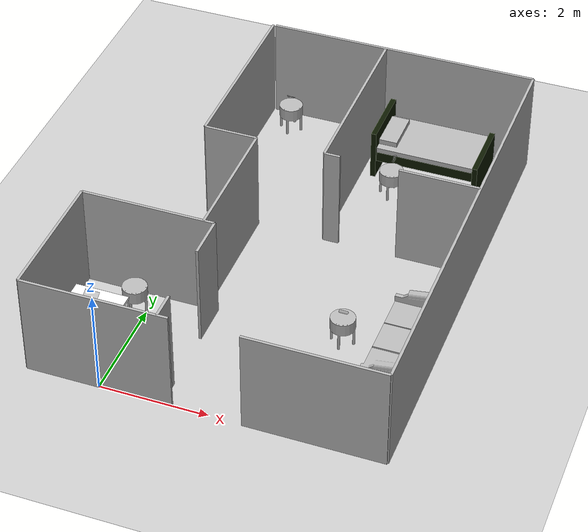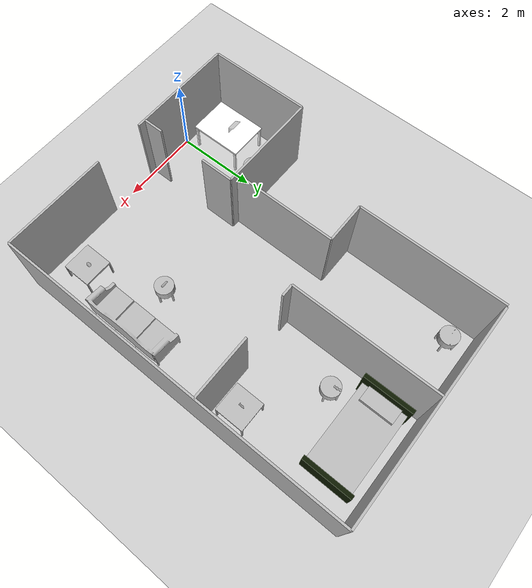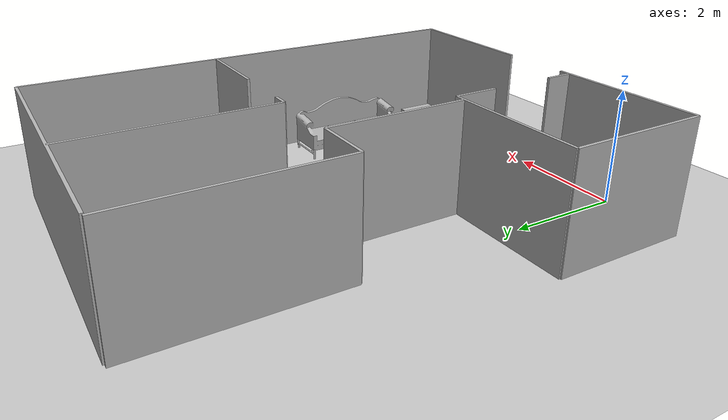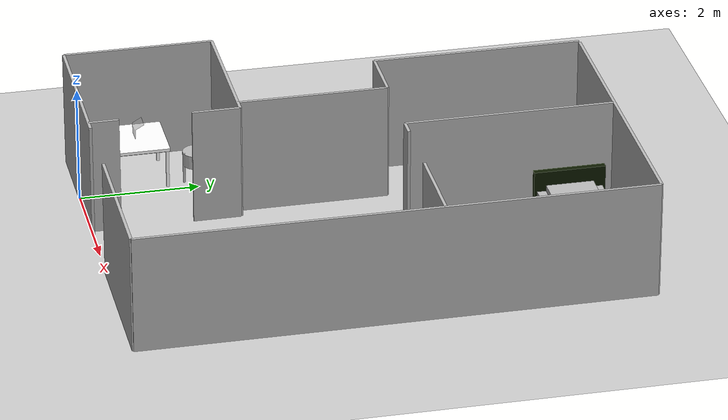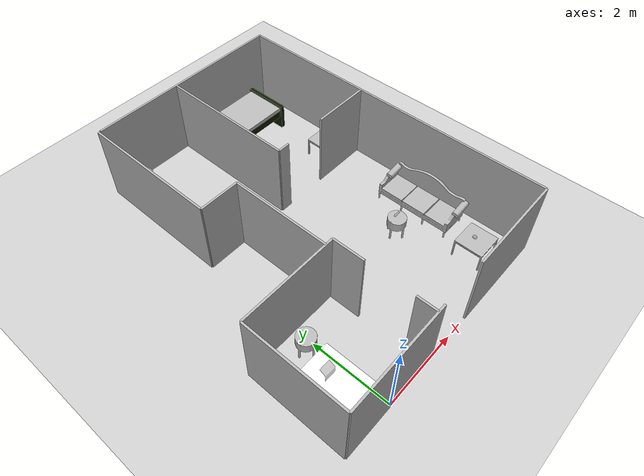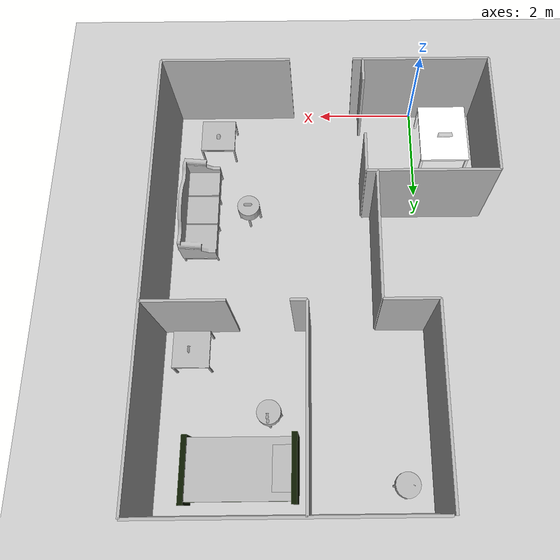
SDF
<sdf version="1.5">
 <world name="myworld">
  <include><uri>model://sun</uri></include>
  <include><uri>model://ground_plane</uri></include>
  <include><uri>model://hri_one_bedroom</uri></include>
  <include><uri>model://hri_couch</uri><pose>4.5 2.5 0 0 0 3.1416</pose></include>
  <include><uri>model://hri_coffeetable</uri><pose>4.2 0.8 0 0 0 0</pose></include>
  <include><uri>model://hri_roundtable</uri><pose>3.5 2.5 0 0 0 0</pose></include>
  <include><uri>model://hri_roundtable</uri><pose>-0.2 2 0 0 0 0</pose></include>
  <include><uri>model://hri_desk</uri><pose>-0.6 0.9 0 0 0 1.5708</pose></include>
  <include><uri>model://hri_bed</uri><pose>3.5 7.7 0 0 0 3.1416</pose></include>
  <include><uri>model://hri_roundtable</uri><pose>3 6.7 0 0 0 0</pose></include>
  <include><uri>model://hri_coffeetable</uri><pose>4.5 5.5 0 0 0 3.1416</pose></include>
  <include><uri>model://hri_roundtable</uri><pose>0.5 8 0 0 0 0</pose></include>
  <include><uri>model://hri_obj_laptop</uri><pose>-0.6 1 0.9 0 0 0</pose></include>
  <include><uri>model://hri_obj_mug</uri><pose>4.2 0.8 0.5 0 0 0</pose></include>
  <include><uri>model://hri_obj_glassescase</uri><pose>3.5 2.5 0.6 0 0 0</pose></include>
  <include><uri>model://hri_obj_statue</uri><pose>3 6.75 0.6 0 0 0</pose></include>
  <include><uri>model://hri_obj_monitor</uri><pose>4.5 5.5 0.6 0 0 0</pose></include>
  <include><uri>model://hri_obj_fork</uri><pose>0.5 8 0.6 0 0 0</pose></include>
 </world>
</sdf>

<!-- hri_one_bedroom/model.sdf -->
<sdf version="1.4">
<model name="hri_one_bedroom">
  <pose>0 0 0 0 0 0</pose>
  <static>true</static>

    <link name="wall1">
      <pose>0 0 1 0 0 0</pose>
      <inertial>
        <mass>1000.0</mass>
        <inertia> <!-- interias are tricky to compute -->
          <!-- http://answers.gazebosim.org/question/4372/the-inertia-matrix-explained/ -->
          <ixx>0.083</ixx>       <!-- for a box: ixx = 0.083 * mass * (y*y + z*z) -->
          <ixy>0.0</ixy>         <!-- for a box: ixy = 0 -->
          <ixz>0.0</ixz>         <!-- for a box: ixz = 0 -->
          <iyy>0.083</iyy>       <!-- for a box: iyy = 0.083 * mass * (x*x + z*z) -->
          <iyz>0.0</iyz>         <!-- for a box: iyz = 0 -->
          <izz>0.083</izz>       <!-- for a box: izz = 0.083 * mass * (x*x + y*y) -->
        </inertia>
      </inertial>
      <collision name="collision">
        <geometry>
          <box>
            <size>2.7    0.0500    2.0000</size>
          </box>
        </geometry>
      </collision>
      <visual name="visual">
        <geometry>
          <box>
            <size>2.7    0.0500    2.0000</size>
          </box>
        </geometry>
      </visual>
    </link>

    <link name="wall2">
      <pose>-1.35 1.25 1 0 0 0</pose>
      <inertial>
        <mass>1000.0</mass>
        <inertia> <!-- interias are tricky to compute -->
          <!-- http://answers.gazebosim.org/question/4372/the-inertia-matrix-explained/ -->
          <ixx>0.083</ixx>       <!-- for a box: ixx = 0.083 * mass * (y*y + z*z) -->
          <ixy>0.0</ixy>         <!-- for a box: ixy = 0 -->
          <ixz>0.0</ixz>         <!-- for a box: ixz = 0 -->
          <iyy>0.083</iyy>       <!-- for a box: iyy = 0.083 * mass * (x*x + z*z) -->
          <iyz>0.0</iyz>         <!-- for a box: iyz = 0 -->
          <izz>0.083</izz>       <!-- for a box: izz = 0.083 * mass * (x*x + y*y) -->
        </inertia>
      </inertial>
      <collision name="collision">
        <geometry>
          <box>
            <size>0.0500    2.5    2.0000</size>
          </box>
        </geometry>
      </collision>
      <visual name="visual">
        <geometry>
          <box>
            <size>0.0500    2.5    2.0000</size>
          </box>
        </geometry>
      </visual>
    </link>

    <link name="wall3">
      <pose>-0.1 2.5 1 0 0 0</pose>
      <inertial>
        <mass>1000.0</mass>
        <inertia> <!-- interias are tricky to compute -->
          <!-- http://answers.gazebosim.org/question/4372/the-inertia-matrix-explained/ -->
          <ixx>0.083</ixx>       <!-- for a box: ixx = 0.083 * mass * (y*y + z*z) -->
          <ixy>0.0</ixy>         <!-- for a box: ixy = 0 -->
          <ixz>0.0</ixz>         <!-- for a box: ixz = 0 -->
          <iyy>0.083</iyy>       <!-- for a box: iyy = 0.083 * mass * (x*x + z*z) -->
          <iyz>0.0</iyz>         <!-- for a box: iyz = 0 -->
          <izz>0.083</izz>       <!-- for a box: izz = 0.083 * mass * (x*x + y*y) -->
        </inertia>
      </inertial>
      <collision name="collision">
        <geometry>
          <box>
            <size>2.5    0.0500    2.0000</size>
          </box>
        </geometry>
      </collision>
      <visual name="visual">
        <geometry>
          <box>
            <size>2.5    0.0500    2.0000</size>
          </box>
        </geometry>
      </visual>
    </link>

    <link name="wall4">
      <pose>1.15 0.25 1 0 0 0</pose>
      <inertial>
        <mass>1000.0</mass>
        <inertia> <!-- interias are tricky to compute -->
          <!-- http://answers.gazebosim.org/question/4372/the-inertia-matrix-explained/ -->
          <ixx>0.083</ixx>       <!-- for a box: ixx = 0.083 * mass * (y*y + z*z) -->
          <ixy>0.0</ixy>         <!-- for a box: ixy = 0 -->
          <ixz>0.0</ixz>         <!-- for a box: ixz = 0 -->
          <iyy>0.083</iyy>       <!-- for a box: iyy = 0.083 * mass * (x*x + z*z) -->
          <iyz>0.0</iyz>         <!-- for a box: iyz = 0 -->
          <izz>0.083</izz>       <!-- for a box: izz = 0.083 * mass * (x*x + y*y) -->
        </inertia>
      </inertial>
      <collision name="collision">
        <geometry>
          <box>
            <size>0.0500    0.5    2.0000</size>
          </box>
        </geometry>
      </collision>
      <visual name="visual">
        <geometry>
          <box>
            <size>0.0500    0.5    2.0000</size>
          </box>
        </geometry>
      </visual>
    </link>

    <link name="wall5">
      <pose>1.15 2.1 1 0 0 0</pose>
      <inertial>
        <mass>1000.0</mass>
        <inertia> <!-- interias are tricky to compute -->
          <!-- http://answers.gazebosim.org/question/4372/the-inertia-matrix-explained/ -->
          <ixx>0.083</ixx>       <!-- for a box: ixx = 0.083 * mass * (y*y + z*z) -->
          <ixy>0.0</ixy>         <!-- for a box: ixy = 0 -->
          <ixz>0.0</ixz>         <!-- for a box: ixz = 0 -->
          <iyy>0.083</iyy>       <!-- for a box: iyy = 0.083 * mass * (x*x + z*z) -->
          <iyz>0.0</iyz>         <!-- for a box: iyz = 0 -->
          <izz>0.083</izz>       <!-- for a box: izz = 0.083 * mass * (x*x + y*y) -->
        </inertia>
      </inertial>
      <collision name="collision">
        <geometry>
          <box>
            <size>0.0500    0.8    2.0000</size>
          </box>
        </geometry>
      </collision>
      <visual name="visual">
        <geometry>
          <box>
            <size>0.0500    0.8    2.0000</size>
          </box>
        </geometry>
      </visual>
    </link>

    <link name="wall6">
      <pose>0.95 3.75 1 0 0 0</pose>
      <inertial>
        <mass>1000.0</mass>
        <inertia> <!-- interias are tricky to compute -->
          <!-- http://answers.gazebosim.org/question/4372/the-inertia-matrix-explained/ -->
          <ixx>0.083</ixx>       <!-- for a box: ixx = 0.083 * mass * (y*y + z*z) -->
          <ixy>0.0</ixy>         <!-- for a box: ixy = 0 -->
          <ixz>0.0</ixz>         <!-- for a box: ixz = 0 -->
          <iyy>0.083</iyy>       <!-- for a box: iyy = 0.083 * mass * (x*x + z*z) -->
          <iyz>0.0</iyz>         <!-- for a box: iyz = 0 -->
          <izz>0.083</izz>       <!-- for a box: izz = 0.083 * mass * (x*x + y*y) -->
        </inertia>
      </inertial>
      <collision name="collision">
        <geometry>
          <box>
            <size>0.0500    2.5    2.0000</size>
          </box>
        </geometry>
      </collision>
      <visual name="visual">
        <geometry>
          <box>
            <size>0.0500    2.5    2.0000</size>
          </box>
        </geometry>
      </visual>
    </link>

    <link name="wall7">
      <pose>0.45 5 1 0 0 0</pose>
      <inertial>
        <mass>1000.0</mass>
        <inertia> <!-- interias are tricky to compute -->
          <!-- http://answers.gazebosim.org/question/4372/the-inertia-matrix-explained/ -->
          <ixx>0.083</ixx>       <!-- for a box: ixx = 0.083 * mass * (y*y + z*z) -->
          <ixy>0.0</ixy>         <!-- for a box: ixy = 0 -->
          <ixz>0.0</ixz>         <!-- for a box: ixz = 0 -->
          <iyy>0.083</iyy>       <!-- for a box: iyy = 0.083 * mass * (x*x + z*z) -->
          <iyz>0.0</iyz>         <!-- for a box: iyz = 0 -->
          <izz>0.083</izz>       <!-- for a box: izz = 0.083 * mass * (x*x + y*y) -->
        </inertia>
      </inertial>
      <collision name="collision">
        <geometry>
          <box>
            <size>1.0    0.0500    2.0000</size>
          </box>
        </geometry>
      </collision>
      <visual name="visual">
        <geometry>
          <box>
            <size>1.0    0.0500    2.0000</size>
          </box>
        </geometry>
      </visual>
    </link>

    <link name="wall8">
      <pose>-0.05 6.75 1 0 0 0</pose>
      <inertial>
        <mass>1000.0</mass>
        <inertia> <!-- interias are tricky to compute -->
          <!-- http://answers.gazebosim.org/question/4372/the-inertia-matrix-explained/ -->
          <ixx>0.083</ixx>       <!-- for a box: ixx = 0.083 * mass * (y*y + z*z) -->
          <ixy>0.0</ixy>         <!-- for a box: ixy = 0 -->
          <ixz>0.0</ixz>         <!-- for a box: ixz = 0 -->
          <iyy>0.083</iyy>       <!-- for a box: iyy = 0.083 * mass * (x*x + z*z) -->
          <iyz>0.0</iyz>         <!-- for a box: iyz = 0 -->
          <izz>0.083</izz>       <!-- for a box: izz = 0.083 * mass * (x*x + y*y) -->
        </inertia>
      </inertial>
      <collision name="collision">
        <geometry>
          <box>
            <size>0.0500    3.5    2.0000</size>
          </box>
        </geometry>
      </collision>
      <visual name="visual">
        <geometry>
          <box>
            <size>0.0500    3.5    2.0000</size>
          </box>
        </geometry>
      </visual>
    </link>

    <link name="wall9">
      <pose>2.575 8.5 1 0 0 0</pose>
      <inertial>
        <mass>1000.0</mass>
        <inertia> <!-- interias are tricky to compute -->
          <!-- http://answers.gazebosim.org/question/4372/the-inertia-matrix-explained/ -->
          <ixx>0.083</ixx>       <!-- for a box: ixx = 0.083 * mass * (y*y + z*z) -->
          <ixy>0.0</ixy>         <!-- for a box: ixy = 0 -->
          <ixz>0.0</ixz>         <!-- for a box: ixz = 0 -->
          <iyy>0.083</iyy>       <!-- for a box: iyy = 0.083 * mass * (x*x + z*z) -->
          <iyz>0.0</iyz>         <!-- for a box: iyz = 0 -->
          <izz>0.083</izz>       <!-- for a box: izz = 0.083 * mass * (x*x + y*y) -->
        </inertia>
      </inertial>
      <collision name="collision">
        <geometry>
          <box>
            <size>5.15    0.0500    2.0000</size>
          </box>
        </geometry>
      </collision>
      <visual name="visual">
        <geometry>
          <box>
            <size>5.15    0.0500    2.0000</size>
          </box>
        </geometry>
      </visual>
    </link>

    <link name="wall10">
      <pose>5.15 4.25 1 0 0 0</pose>
      <inertial>
        <mass>1000.0</mass>
        <inertia> <!-- interias are tricky to compute -->
          <!-- http://answers.gazebosim.org/question/4372/the-inertia-matrix-explained/ -->
          <ixx>0.083</ixx>       <!-- for a box: ixx = 0.083 * mass * (y*y + z*z) -->
          <ixy>0.0</ixy>         <!-- for a box: ixy = 0 -->
          <ixz>0.0</ixz>         <!-- for a box: ixz = 0 -->
          <iyy>0.083</iyy>       <!-- for a box: iyy = 0.083 * mass * (x*x + z*z) -->
          <iyz>0.0</iyz>         <!-- for a box: iyz = 0 -->
          <izz>0.083</izz>       <!-- for a box: izz = 0.083 * mass * (x*x + y*y) -->
        </inertia>
      </inertial>
      <collision name="collision">
        <geometry>
          <box>
            <size>0.0500    8.5    2.0000</size>
          </box>
        </geometry>
      </collision>
      <visual name="visual">
        <geometry>
          <box>
            <size>0.0500    8.5    2.0000</size>
          </box>
        </geometry>
      </visual>
    </link>

    <link name="wall11">
      <pose>3.875 0 1 0 0 0</pose>
      <inertial>
        <mass>1000.0</mass>
        <inertia> <!-- interias are tricky to compute -->
          <!-- http://answers.gazebosim.org/question/4372/the-inertia-matrix-explained/ -->
          <ixx>0.083</ixx>       <!-- for a box: ixx = 0.083 * mass * (y*y + z*z) -->
          <ixy>0.0</ixy>         <!-- for a box: ixy = 0 -->
          <ixz>0.0</ixz>         <!-- for a box: ixz = 0 -->
          <iyy>0.083</iyy>       <!-- for a box: iyy = 0.083 * mass * (x*x + z*z) -->
          <iyz>0.0</iyz>         <!-- for a box: iyz = 0 -->
          <izz>0.083</izz>       <!-- for a box: izz = 0.083 * mass * (x*x + y*y) -->
        </inertia>
      </inertial>
      <collision name="collision">
        <geometry>
          <box>
            <size>2.55    0.0500    2.0000</size>
          </box>
        </geometry>
      </collision>
      <visual name="visual">
        <geometry>
          <box>
            <size>2.55    0.0500    2.0000</size>
          </box>
        </geometry>
      </visual>
    </link>

    <link name="wall12">
      <pose>4.4 5 1 0 0 0</pose>
      <inertial>
        <mass>1000.0</mass>
        <inertia> <!-- interias are tricky to compute -->
          <!-- http://answers.gazebosim.org/question/4372/the-inertia-matrix-explained/ -->
          <ixx>0.083</ixx>       <!-- for a box: ixx = 0.083 * mass * (y*y + z*z) -->
          <ixy>0.0</ixy>         <!-- for a box: ixy = 0 -->
          <ixz>0.0</ixz>         <!-- for a box: ixz = 0 -->
          <iyy>0.083</iyy>       <!-- for a box: iyy = 0.083 * mass * (x*x + z*z) -->
          <iyz>0.0</iyz>         <!-- for a box: iyz = 0 -->
          <izz>0.083</izz>       <!-- for a box: izz = 0.083 * mass * (x*x + y*y) -->
        </inertia>
      </inertial>
      <collision name="collision">
        <geometry>
          <box>
            <size>1.5    0.0500    2.0000</size>
          </box>
        </geometry>
      </collision>
      <visual name="visual">
        <geometry>
          <box>
            <size>1.5    0.0500    2.0000</size>
          </box>
        </geometry>
      </visual>
    </link>

    <link name="wall13">
      <pose>2.4 5 1 0 0 0</pose>
      <inertial>
        <mass>1000.0</mass>
        <inertia> <!-- interias are tricky to compute -->
          <!-- http://answers.gazebosim.org/question/4372/the-inertia-matrix-explained/ -->
          <ixx>0.083</ixx>       <!-- for a box: ixx = 0.083 * mass * (y*y + z*z) -->
          <ixy>0.0</ixy>         <!-- for a box: ixy = 0 -->
          <ixz>0.0</ixz>         <!-- for a box: ixz = 0 -->
          <iyy>0.083</iyy>       <!-- for a box: iyy = 0.083 * mass * (x*x + z*z) -->
          <iyz>0.0</iyz>         <!-- for a box: iyz = 0 -->
          <izz>0.083</izz>       <!-- for a box: izz = 0.083 * mass * (x*x + y*y) -->
        </inertia>
      </inertial>
      <collision name="collision">
        <geometry>
          <box>
            <size>0.3    0.0500    2.0000</size>
          </box>
        </geometry>
      </collision>
      <visual name="visual">
        <geometry>
          <box>
            <size>0.3    0.0500    2.0000</size>
          </box>
        </geometry>
      </visual>
    </link>

    <link name="wall14">
      <pose>2.25 6.75 1 0 0 0</pose>
      <inertial>
        <mass>1000.0</mass>
        <inertia> <!-- interias are tricky to compute -->
          <!-- http://answers.gazebosim.org/question/4372/the-inertia-matrix-explained/ -->
          <ixx>0.083</ixx>       <!-- for a box: ixx = 0.083 * mass * (y*y + z*z) -->
          <ixy>0.0</ixy>         <!-- for a box: ixy = 0 -->
          <ixz>0.0</ixz>         <!-- for a box: ixz = 0 -->
          <iyy>0.083</iyy>       <!-- for a box: iyy = 0.083 * mass * (x*x + z*z) -->
          <iyz>0.0</iyz>         <!-- for a box: iyz = 0 -->
          <izz>0.083</izz>       <!-- for a box: izz = 0.083 * mass * (x*x + y*y) -->
        </inertia>
      </inertial>
      <collision name="collision">
        <geometry>
          <box>
            <size>0.0500    3.5    2.0000</size>
          </box>
        </geometry>
      </collision>
      <visual name="visual">
        <geometry>
          <box>
            <size>0.0500    3.5    2.0000</size>
          </box>
        </geometry>
      </visual>
    </link>

  </model>
</sdf>

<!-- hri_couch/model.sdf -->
<sdf version="1.4">
<model name="couch">
  <pose>0 0 0 0 0 0</pose>
  <static>true</static>
    <link name="link">
      <pose>0 0 0 0 0 0</pose>
      <inertial>
        <mass>1.0</mass>
        <inertia> <!-- interias are tricky to compute -->
          <!-- http://answers.gazebosim.org/question/4372/the-inertia-matrix-explained/ -->
          <ixx>0.083</ixx>       <!-- for a box: ixx = 0.083 * mass * (y*y + z*z) -->
          <ixy>0.0</ixy>         <!-- for a box: ixy = 0 -->
          <ixz>0.0</ixz>         <!-- for a box: ixz = 0 -->
          <iyy>0.083</iyy>       <!-- for a box: iyy = 0.083 * mass * (x*x + z*z) -->
          <iyz>0.0</iyz>         <!-- for a box: iyz = 0 -->
          <izz>0.083</izz>       <!-- for a box: izz = 0.083 * mass * (x*x + y*y) -->
        </inertia>
      </inertial>
      <collision name="collision">
	<pose>0 0 0 1.5708 0 0</pose>
        <geometry>
	  <mesh>
	    <uri>model://hri_couch/meshes/couch.dae</uri>
	    <scale>1 1 1</scale>
	  </mesh>
        </geometry>
      </collision>
      <visual name="visual">
	<pose>0 0 0 1.5708 0 0</pose>
        <geometry>
	  <mesh>
	    <uri>model://hri_couch/meshes/couch.dae</uri>
	    <scale>1 1 1</scale>
	  </mesh>
        </geometry>
      </visual>
    </link>
  </model>
</sdf>

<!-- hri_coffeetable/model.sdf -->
<sdf version="1.4">
<model name="coffee table">
  <pose>0 0 0 0 0 0</pose>
  <static>true</static>
    <link name="link">
      <pose>0 0 0 0 0 0</pose>
      <inertial>
        <mass>1.0</mass>
        <inertia> <!-- interias are tricky to compute -->
          <!-- http://answers.gazebosim.org/question/4372/the-inertia-matrix-explained/ -->
          <ixx>0.083</ixx>       <!-- for a box: ixx = 0.083 * mass * (y*y + z*z) -->
          <ixy>0.0</ixy>         <!-- for a box: ixy = 0 -->
          <ixz>0.0</ixz>         <!-- for a box: ixz = 0 -->
          <iyy>0.083</iyy>       <!-- for a box: iyy = 0.083 * mass * (x*x + z*z) -->
          <iyz>0.0</iyz>         <!-- for a box: iyz = 0 -->
          <izz>0.083</izz>       <!-- for a box: izz = 0.083 * mass * (x*x + y*y) -->
        </inertia>
      </inertial>
      <collision name="collision">
	<pose>0 0 0 1.5708 0 0</pose>
        <geometry>
	  <mesh>
	    <uri>model://hri_coffeetable/meshes/coffeetable.dae</uri>
	    <scale>1 1 1</scale>
	  </mesh>
        </geometry>
      </collision>
      <visual name="visual">
	<pose>0 0 0 1.5708 0 0</pose>
        <geometry>
	  <mesh>
	    <uri>model://hri_coffeetable/meshes/coffeetable.dae</uri>
	    <scale>1 1 1</scale>
	  </mesh>
        </geometry>
      </visual>
    </link>
  </model>
</sdf>

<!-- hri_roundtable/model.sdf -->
<sdf version="1.4">
<model name="round table">
  <pose>0 0 0 0 0 0</pose>
  <static>true</static>
    <link name="link">
      <pose>0 0 0 0 0 0</pose>
      <inertial>
        <mass>1.0</mass>
        <inertia> <!-- interias are tricky to compute -->
          <!-- http://answers.gazebosim.org/question/4372/the-inertia-matrix-explained/ -->
          <ixx>0.083</ixx>       <!-- for a box: ixx = 0.083 * mass * (y*y + z*z) -->
          <ixy>0.0</ixy>         <!-- for a box: ixy = 0 -->
          <ixz>0.0</ixz>         <!-- for a box: ixz = 0 -->
          <iyy>0.083</iyy>       <!-- for a box: iyy = 0.083 * mass * (x*x + z*z) -->
          <iyz>0.0</iyz>         <!-- for a box: iyz = 0 -->
          <izz>0.083</izz>       <!-- for a box: izz = 0.083 * mass * (x*x + y*y) -->
        </inertia>
      </inertial>
      <collision name="collision">
	<pose>0 0 0 1.5708 0 0</pose>
        <geometry>
	  <mesh>
	    <uri>model://hri_roundtable/meshes/roundtable.dae</uri>
	    <scale>1 1 1</scale>
	  </mesh>
        </geometry>
      </collision>
      <visual name="visual">
	<pose>0 0 0 1.5708 0 0</pose>
        <geometry>
	  <mesh>
	    <uri>model://hri_roundtable/meshes/roundtable.dae</uri>
	    <scale>1 1 1</scale>
	  </mesh>
        </geometry>
      </visual>
    </link>
  </model>
</sdf>

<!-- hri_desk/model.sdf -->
<sdf version="1.4">
<model name="hri_desk">
  <pose>0 0 0 0 0 0</pose>
  <static>true</static>

    <link name="wall1">
      <pose>0 0 0.685 0 0 0</pose>
      <inertial>
        <mass>1000.0</mass>
        <inertia> <!-- interias are tricky to compute -->
          <!-- http://answers.gazebosim.org/question/4372/the-inertia-matrix-explained/ -->
          <ixx>0.083</ixx>       <!-- for a box: ixx = 0.083 * mass * (y*y + z*z) -->
          <ixy>0.0</ixy>         <!-- for a box: ixy = 0 -->
          <ixz>0.0</ixz>         <!-- for a box: ixz = 0 -->
          <iyy>0.083</iyy>       <!-- for a box: iyy = 0.083 * mass * (x*x + z*z) -->
          <iyz>0.0</iyz>         <!-- for a box: iyz = 0 -->
          <izz>0.083</izz>       <!-- for a box: izz = 0.083 * mass * (x*x + y*y) -->
        </inertia>
      </inertial>
      <collision name="collision">
        <geometry>
          <box>
            <size>1.3    1.0    0.05</size>
          </box>
        </geometry>
      </collision>
      <visual name="visual">
        <geometry>
          <box>
            <size>1.3    1.0    0.05</size>
          </box>
        </geometry>
	<material>
          <ambient>0.5 0.5 0.3 1</ambient>
          <diffuse>1 1 1 1</diffuse>
          <specular>0.1 0.1 0.1 1</specular>
          <emissive>0 0 0 0</emissive>
        </material>
      </visual>
    </link>

    <link name="wall2">
      <pose>0.6    0.475    0.33 0 0 0</pose>
      <inertial>
        <mass>1000.0</mass>
        <inertia> <!-- interias are tricky to compute -->
          <!-- http://answers.gazebosim.org/question/4372/the-inertia-matrix-explained/ -->
          <ixx>0.083</ixx>       <!-- for a box: ixx = 0.083 * mass * (y*y + z*z) -->
          <ixy>0.0</ixy>         <!-- for a box: ixy = 0 -->
          <ixz>0.0</ixz>         <!-- for a box: ixz = 0 -->
          <iyy>0.083</iyy>       <!-- for a box: iyy = 0.083 * mass * (x*x + z*z) -->
          <iyz>0.0</iyz>         <!-- for a box: iyz = 0 -->
          <izz>0.083</izz>       <!-- for a box: izz = 0.083 * mass * (x*x + y*y) -->
        </inertia>
      </inertial>
      <collision name="collision">
        <geometry>
          <box>
            <size>0.0500    0.0500    0.66</size>
          </box>
        </geometry>
      </collision>
      <visual name="visual">
        <geometry>
          <box>
            <size>0.0500    0.0500    0.66</size>
          </box>
        </geometry>
	<material>
          <ambient>1 1 0.5 1</ambient>
          <diffuse>1 1 1 1</diffuse>
          <specular>0.1 0.1 0.1 1</specular>
          <emissive>0 0 0 0</emissive>
        </material>
      </visual>
    </link>

    <link name="wall3">
      <pose>0.6    -0.475    0.33 0 0 0</pose>
      <inertial>
        <mass>1000.0</mass>
        <inertia> <!-- interias are tricky to compute -->
          <!-- http://answers.gazebosim.org/question/4372/the-inertia-matrix-explained/ -->
          <ixx>0.083</ixx>       <!-- for a box: ixx = 0.083 * mass * (y*y + z*z) -->
          <ixy>0.0</ixy>         <!-- for a box: ixy = 0 -->
          <ixz>0.0</ixz>         <!-- for a box: ixz = 0 -->
          <iyy>0.083</iyy>       <!-- for a box: iyy = 0.083 * mass * (x*x + z*z) -->
          <iyz>0.0</iyz>         <!-- for a box: iyz = 0 -->
          <izz>0.083</izz>       <!-- for a box: izz = 0.083 * mass * (x*x + y*y) -->
        </inertia>
      </inertial>
      <collision name="collision">
        <geometry>
          <box>
            <size>0.0500    0.0500    0.66</size>
          </box>
        </geometry>
      </collision>
      <visual name="visual">
        <geometry>
          <box>
            <size>0.0500    0.0500    0.66</size>
          </box>
        </geometry>
	<material>
          <ambient>1 1 0.5 1</ambient>
          <diffuse>1 1 1 1</diffuse>
          <specular>0.1 0.1 0.1 1</specular>
          <emissive>0 0 0 0</emissive>
        </material>
      </visual>
    </link>

    <link name="wall4">
      <pose>-0.6    -0.475    0.33 0 0 0</pose>
      <inertial>
        <mass>1000.0</mass>
        <inertia> <!-- interias are tricky to compute -->
          <!-- http://answers.gazebosim.org/question/4372/the-inertia-matrix-explained/ -->
          <ixx>0.083</ixx>       <!-- for a box: ixx = 0.083 * mass * (y*y + z*z) -->
          <ixy>0.0</ixy>         <!-- for a box: ixy = 0 -->
          <ixz>0.0</ixz>         <!-- for a box: ixz = 0 -->
          <iyy>0.083</iyy>       <!-- for a box: iyy = 0.083 * mass * (x*x + z*z) -->
          <iyz>0.0</iyz>         <!-- for a box: iyz = 0 -->
          <izz>0.083</izz>       <!-- for a box: izz = 0.083 * mass * (x*x + y*y) -->
        </inertia>
      </inertial>
      <collision name="collision">
        <geometry>
          <box>
            <size>0.0500    0.0500    0.66</size>
          </box>
        </geometry>
      </collision>
      <visual name="visual">
        <geometry>
          <box>
            <size>0.0500    0.0500    0.66</size>
          </box>
        </geometry>
	<material>
          <ambient>1 1 0.5 1</ambient>
          <diffuse>1 1 1 1</diffuse>
          <specular>0.1 0.1 0.1 1</specular>
          <emissive>0 0 0 0</emissive>
        </material>
      </visual>
    </link>

    <link name="wall5">
      <pose>-0.6    0.475    0.33 0 0 0</pose>
      <inertial>
        <mass>1000.0</mass>
        <inertia> <!-- interias are tricky to compute -->
          <!-- http://answers.gazebosim.org/question/4372/the-inertia-matrix-explained/ -->
          <ixx>0.083</ixx>       <!-- for a box: ixx = 0.083 * mass * (y*y + z*z) -->
          <ixy>0.0</ixy>         <!-- for a box: ixy = 0 -->
          <ixz>0.0</ixz>         <!-- for a box: ixz = 0 -->
          <iyy>0.083</iyy>       <!-- for a box: iyy = 0.083 * mass * (x*x + z*z) -->
          <iyz>0.0</iyz>         <!-- for a box: iyz = 0 -->
          <izz>0.083</izz>       <!-- for a box: izz = 0.083 * mass * (x*x + y*y) -->
        </inertia>
      </inertial>
      <collision name="collision">
        <geometry>
          <box>
            <size>0.0500    0.0500    0.66</size>
          </box>
        </geometry>
      </collision>
      <visual name="visual">
        <geometry>
          <box>
            <size>0.0500    0.0500    0.66</size>
          </box>
        </geometry>
	<material>
          <ambient>1 1 0.5 1</ambient>
          <diffuse>1 1 1 1</diffuse>
          <specular>0.1 0.1 0.1 1</specular>
          <emissive>0 0 0 0</emissive>
        </material>
      </visual>
    </link>

  </model>
</sdf>

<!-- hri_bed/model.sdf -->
<sdf version="1.5">
<model name="bed">
  <static>true</static>
    <link name="link">
      <pose>0 0 0.6 0 0 0</pose>
      <inertial>
        <mass>1.0</mass>
        <inertia> <!-- interias are tricky to compute -->
          <!-- http://answers.gazebosim.org/question/4372/the-inertia-matrix-explained/ -->
          <ixx>0.083</ixx>       <!-- for a box: ixx = 0.083 * mass * (y*y + z*z) -->
          <ixy>0.0</ixy>         <!-- for a box: ixy = 0 -->
          <ixz>0.0</ixz>         <!-- for a box: ixz = 0 -->
          <iyy>0.083</iyy>       <!-- for a box: iyy = 0.083 * mass * (x*x + z*z) -->
          <iyz>0.0</iyz>         <!-- for a box: iyz = 0 -->
          <izz>0.083</izz>       <!-- for a box: izz = 0.083 * mass * (x*x + y*y) -->
        </inertia>
      </inertial>
      <collision name="collision">
        <geometry>
          <box>
            <size>2.0    1.1    0.10</size>
          </box>
        </geometry>
      </collision>
      <visual name="visual">
        <geometry>
          <box>
            <size>2.0    1.1    0.10</size>
          </box>
        </geometry>
      </visual>
    </link>

    <link name="link2">
      <pose>0 0 0.45 0 0 0</pose>
      <inertial>
        <mass>1.0</mass>
        <inertia> <!-- interias are tricky to compute -->
          <!-- http://answers.gazebosim.org/question/4372/the-inertia-matrix-explained/ -->
          <ixx>0.083</ixx>       <!-- for a box: ixx = 0.083 * mass * (y*y + z*z) -->
          <ixy>0.0</ixy>         <!-- for a box: ixy = 0 -->
          <ixz>0.0</ixz>         <!-- for a box: ixz = 0 -->
          <iyy>0.083</iyy>       <!-- for a box: iyy = 0.083 * mass * (x*x + z*z) -->
          <iyz>0.0</iyz>         <!-- for a box: iyz = 0 -->
          <izz>0.083</izz>       <!-- for a box: izz = 0.083 * mass * (x*x + y*y) -->
        </inertia>
      </inertial>
      <collision name="collision">
        <geometry>
          <box>
            <size>2.0    1.1    0.20</size>
          </box>
        </geometry>
      </collision>
      <visual name="visual">
        <geometry>
          <box>
            <size>2.0    1.1    0.20</size>
          </box>
        </geometry>
	<material>
	  <ambient>0.25 0 0 1</ambient>
	  <diffuse>0.05 0.1 0 1</diffuse>
	  <specular>0.1 0.1 0.1 1</specular>
	  <emissive>0 0 0 0</emissive>
	</material>
      </visual>
    </link>

    <link name="link3">
      <pose>1 0 0.5 0 0 0</pose>
      <inertial>
        <mass>1.0</mass>
        <inertia> <!-- interias are tricky to compute -->
          <!-- http://answers.gazebosim.org/question/4372/the-inertia-matrix-explained/ -->
          <ixx>0.083</ixx>       <!-- for a box: ixx = 0.083 * mass * (y*y + z*z) -->
          <ixy>0.0</ixy>         <!-- for a box: ixy = 0 -->
          <ixz>0.0</ixz>         <!-- for a box: ixz = 0 -->
          <iyy>0.083</iyy>       <!-- for a box: iyy = 0.083 * mass * (x*x + z*z) -->
          <iyz>0.0</iyz>         <!-- for a box: iyz = 0 -->
          <izz>0.083</izz>       <!-- for a box: izz = 0.083 * mass * (x*x + y*y) -->
        </inertia>
      </inertial>
      <collision name="collision">
        <geometry>
          <box>
            <size>0.1    1.2    1.0</size>
          </box>
        </geometry>
      </collision>
      <visual name="visual">
        <geometry>
          <box>
            <size>0.1    1.2    1.0</size>
          </box>
        </geometry>
	<material>
	  <ambient>0.25 0 0 1</ambient>
	  <diffuse>0.05 0.1 0 1</diffuse>
	  <specular>0.1 0.1 0.1 1</specular>
	  <emissive>0 0 0 0</emissive>
	</material>
      </visual>
    </link>

    <link name="link4">
      <pose>-1 0 0.35 0 0 0</pose>
      <inertial>
        <mass>1.0</mass>
        <inertia> <!-- interias are tricky to compute -->
          <!-- http://answers.gazebosim.org/question/4372/the-inertia-matrix-explained/ -->
          <ixx>0.083</ixx>       <!-- for a box: ixx = 0.083 * mass * (y*y + z*z) -->
          <ixy>0.0</ixy>         <!-- for a box: ixy = 0 -->
          <ixz>0.0</ixz>         <!-- for a box: ixz = 0 -->
          <iyy>0.083</iyy>       <!-- for a box: iyy = 0.083 * mass * (x*x + z*z) -->
          <iyz>0.0</iyz>         <!-- for a box: iyz = 0 -->
          <izz>0.083</izz>       <!-- for a box: izz = 0.083 * mass * (x*x + y*y) -->
        </inertia>
      </inertial>
      <collision name="collision">
        <geometry>
          <box>
            <size>0.1    1.2    0.70</size>
          </box>
        </geometry>
      </collision>
      <visual name="visual">
        <geometry>
          <box>
            <size>0.1    1.2    0.70</size>
          </box>
        </geometry>
	<material>
	  <ambient>0.25 0 0 1</ambient>
	  <diffuse>0.05 0.1 0 1</diffuse>
	  <specular>0.1 0.1 0.1 1</specular>
	  <emissive>0 0 0 0</emissive>
	</material>
      </visual>
    </link>

    <link name="link5">
      <pose>0.80 0 0.7 0 0 0</pose>
      <inertial>
        <mass>1.0</mass>
        <inertia> <!-- interias are tricky to compute -->
          <!-- http://answers.gazebosim.org/question/4372/the-inertia-matrix-explained/ -->
          <ixx>0.083</ixx>       <!-- for a box: ixx = 0.083 * mass * (y*y + z*z) -->
          <ixy>0.0</ixy>         <!-- for a box: ixy = 0 -->
          <ixz>0.0</ixz>         <!-- for a box: ixz = 0 -->
          <iyy>0.083</iyy>       <!-- for a box: iyy = 0.083 * mass * (x*x + z*z) -->
          <iyz>0.0</iyz>         <!-- for a box: iyz = 0 -->
          <izz>0.083</izz>       <!-- for a box: izz = 0.083 * mass * (x*x + y*y) -->
        </inertia>
      </inertial>
      <collision name="collision">
        <geometry>
          <box>
            <size>0.4    0.8    0.10</size>
          </box>
        </geometry>
      </collision>
      <visual name="visual">
        <geometry>
          <box>
            <size>0.4    0.8    0.10</size>
          </box>
        </geometry>
      </visual>
    </link>

  </model>
</sdf>

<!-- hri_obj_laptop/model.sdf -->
<sdf version="1.5">
  <model name="hri_obj_laptop">
    <link name="link">
      <pose>0 0 0 0 0 0</pose>
      <inertial>
        <mass>0.0599</mass>
        <inertia>
          <ixx>0.0003028961527030333</ixx>
          <ixy>0</ixy>
          <ixz>0</ixz>
          <iyy>0.0003028961527030333</iyy>
          <iyz>0</iyz>
          <izz>3.2876352372798436e-05</izz>
        </inertia>
      </inertial>

      <collision name="collision">
        <geometry>
          <mesh>
            <uri>model://hri_obj_laptop/meshes/laptop.dae</uri>
          </mesh>
        </geometry>
        <surface>
          <contact>
            <!-- typical acrylic plastic material properties -->
            <poissons_ratio>0.35</poissons_ratio>
            <elastic_modulus>3.102640776e+09</elastic_modulus>
            <ode>
              <kp>100000</kp>
              <kd>100</kd>
              <max_vel>100.0</max_vel>
              <min_depth>0.001</min_depth>
            </ode>
          </contact>
          <friction>
            <torsional>
              <coefficient>1.0</coefficient>
              <use_patch_radius>0</use_patch_radius>
              <surface_radius>0.01</surface_radius>
            </torsional>
          </friction>
        </surface>
      </collision>

      <visual name="visual">
        <geometry>
          <mesh>
            <uri>model://hri_obj_laptop/meshes/laptop.dae</uri>
          </mesh>
        </geometry>
        <material>
          <script>
            <uri>file://media/materials/scripts/gazebo.material</uri>
            <name>Gazebo/GreyTransparent</name>
          </script>
        </material>
      </visual>

    </link>
  </model>
</sdf>

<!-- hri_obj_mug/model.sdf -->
<sdf version="1.5">
  <model name="hri_obj_mug">
    <link name="link">
      <pose>0 0 0.065 0 0 0</pose>
      <inertial>
        <mass>0.0599</mass>
        <inertia>
          <ixx>0.0003028961527030333</ixx>
          <ixy>0</ixy>
          <ixz>0</ixz>
          <iyy>0.0003028961527030333</iyy>
          <iyz>0</iyz>
          <izz>3.2876352372798436e-05</izz>
        </inertia>
      </inertial>

      <collision name="collision">
        <geometry>
          <mesh>
            <uri>model://hri_obj_mug/meshes/mug.dae</uri>
          </mesh>
        </geometry>
        <surface>
          <contact>
            <!-- typical acrylic plastic material properties -->
            <poissons_ratio>0.35</poissons_ratio>
            <elastic_modulus>3.102640776e+09</elastic_modulus>
            <ode>
              <kp>100000</kp>
              <kd>100</kd>
              <max_vel>100.0</max_vel>
              <min_depth>0.001</min_depth>
            </ode>
          </contact>
          <friction>
            <torsional>
              <coefficient>1.0</coefficient>
              <use_patch_radius>0</use_patch_radius>
              <surface_radius>0.01</surface_radius>
            </torsional>
          </friction>
        </surface>
      </collision>

      <visual name="visual">
        <geometry>
          <mesh>
            <uri>model://hri_obj_mug/meshes/mug.dae</uri>
          </mesh>
        </geometry>
        <material>
          <script>
            <uri>file://media/materials/scripts/gazebo.material</uri>
            <name>Gazebo/GreyTransparent</name>
          </script>
        </material>
      </visual>

    </link>
  </model>
</sdf>

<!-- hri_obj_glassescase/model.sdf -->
<sdf version="1.5">
  <model name="hri_obj_glassescase">
    <link name="link">
      <pose>0 0 0.065 0 0 0</pose>
      <inertial>
        <mass>0.0599</mass>
        <inertia>
          <ixx>0.0003028961527030333</ixx>
          <ixy>0</ixy>
          <ixz>0</ixz>
          <iyy>0.0003028961527030333</iyy>
          <iyz>0</iyz>
          <izz>3.2876352372798436e-05</izz>
        </inertia>
      </inertial>

      <collision name="collision">
        <geometry>
          <mesh>
            <uri>model://hri_obj_glassescase/meshes/glassescase.dae</uri>
          </mesh>
        </geometry>
        <surface>
          <contact>
            <!-- typical acrylic plastic material properties -->
            <poissons_ratio>0.35</poissons_ratio>
            <elastic_modulus>3.102640776e+09</elastic_modulus>
            <ode>
              <kp>100000</kp>
              <kd>100</kd>
              <max_vel>100.0</max_vel>
              <min_depth>0.001</min_depth>
            </ode>
          </contact>
          <friction>
            <torsional>
              <coefficient>1.0</coefficient>
              <use_patch_radius>0</use_patch_radius>
              <surface_radius>0.01</surface_radius>
            </torsional>
          </friction>
        </surface>
      </collision>

      <visual name="visual">
        <geometry>
          <mesh>
            <uri>model://hri_obj_glassescase/meshes/glassescase.dae</uri>
          </mesh>
        </geometry>
        <material>
          <script>
            <uri>file://media/materials/scripts/gazebo.material</uri>
            <name>Gazebo/GreyTransparent</name>
          </script>
        </material>
      </visual>

    </link>
  </model>
</sdf>

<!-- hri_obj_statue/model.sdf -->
<sdf version="1.5">
  <model name="hri_obj_statue">
    <link name="link">
      <pose>0 0 0.15 0 0 0</pose>
      <inertial>
        <mass>0.0599</mass>
        <inertia>
          <ixx>0.0003028961527030333</ixx>
          <ixy>0</ixy>
          <ixz>0</ixz>
          <iyy>0.0003028961527030333</iyy>
          <iyz>0</iyz>
          <izz>3.2876352372798436e-05</izz>
        </inertia>
      </inertial>

      <collision name="collision">
        <geometry>
          <mesh>
            <uri>model://hri_obj_statue/meshes/statue.dae</uri>
          </mesh>
        </geometry>
        <surface>
          <contact>
            <!-- typical acrylic plastic material properties -->
            <poissons_ratio>0.35</poissons_ratio>
            <elastic_modulus>3.102640776e+09</elastic_modulus>
            <ode>
              <kp>100000</kp>
              <kd>100</kd>
              <max_vel>100.0</max_vel>
              <min_depth>0.001</min_depth>
            </ode>
          </contact>
          <friction>
            <torsional>
              <coefficient>1.0</coefficient>
              <use_patch_radius>0</use_patch_radius>
              <surface_radius>0.01</surface_radius>
            </torsional>
          </friction>
        </surface>
      </collision>

      <visual name="visual">
        <geometry>
          <mesh>
            <uri>model://hri_obj_statue/meshes/statue.dae</uri>
          </mesh>
        </geometry>
        <material>
          <script>
            <uri>file://media/materials/scripts/gazebo.material</uri>
            <name>Gazebo/GreyTransparent</name>
          </script>
        </material>
      </visual>

    </link>
  </model>
</sdf>

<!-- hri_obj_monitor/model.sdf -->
<sdf version="1.5">
  <model name="hri_obj_monitor">
    <link name="link">
      <pose>0 0 0.15 0 0 0</pose>
      <inertial>
        <mass>0.0599</mass>
        <inertia>
          <ixx>0.0003028961527030333</ixx>
          <ixy>0</ixy>
          <ixz>0</ixz>
          <iyy>0.0003028961527030333</iyy>
          <iyz>0</iyz>
          <izz>3.2876352372798436e-05</izz>
        </inertia>
      </inertial>

      <collision name="collision">
        <geometry>
          <mesh>
            <uri>model://hri_obj_monitor/meshes/monitor.dae</uri>
          </mesh>
        </geometry>
        <surface>
          <contact>
            <!-- typical acrylic plastic material properties -->
            <poissons_ratio>0.35</poissons_ratio>
            <elastic_modulus>3.102640776e+09</elastic_modulus>
            <ode>
              <kp>100000</kp>
              <kd>100</kd>
              <max_vel>100.0</max_vel>
              <min_depth>0.001</min_depth>
            </ode>
          </contact>
          <friction>
            <torsional>
              <coefficient>1.0</coefficient>
              <use_patch_radius>0</use_patch_radius>
              <surface_radius>0.01</surface_radius>
            </torsional>
          </friction>
        </surface>
      </collision>

      <visual name="visual">
        <geometry>
          <mesh>
            <uri>model://hri_obj_monitor/meshes/monitor.dae</uri>
          </mesh>
        </geometry>
        <material>
          <script>
            <uri>file://media/materials/scripts/gazebo.material</uri>
            <name>Gazebo/GreyTransparent</name>
          </script>
        </material>
      </visual>

    </link>
  </model>
</sdf>

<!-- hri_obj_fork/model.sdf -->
<sdf version="1.5">
  <model name="hri_obj_fork">
    <link name="link">
      <pose>0 0 0.15 0 0 0</pose>
      <inertial>
        <mass>0.0599</mass>
        <inertia>
          <ixx>0.0003028961527030333</ixx>
          <ixy>0</ixy>
          <ixz>0</ixz>
          <iyy>0.0003028961527030333</iyy>
          <iyz>0</iyz>
          <izz>3.2876352372798436e-05</izz>
        </inertia>
      </inertial>

      <collision name="collision">
        <geometry>
          <mesh>
            <uri>model://hri_obj_fork/meshes/fork.dae</uri>
          </mesh>
        </geometry>
        <surface>
          <contact>
            <!-- typical acrylic plastic material properties -->
            <poissons_ratio>0.35</poissons_ratio>
            <elastic_modulus>3.102640776e+09</elastic_modulus>
            <ode>
              <kp>100000</kp>
              <kd>100</kd>
              <max_vel>100.0</max_vel>
              <min_depth>0.001</min_depth>
            </ode>
          </contact>
          <friction>
            <torsional>
              <coefficient>1.0</coefficient>
              <use_patch_radius>0</use_patch_radius>
              <surface_radius>0.01</surface_radius>
            </torsional>
          </friction>
        </surface>
      </collision>

      <visual name="visual">
        <geometry>
          <mesh>
            <uri>model://hri_obj_fork/meshes/fork.dae</uri>
          </mesh>
        </geometry>
        <material>
          <script>
            <uri>file://media/materials/scripts/gazebo.material</uri>
            <name>Gazebo/GreyTransparent</name>
          </script>
        </material>
      </visual>

    </link>
  </model>
</sdf>
